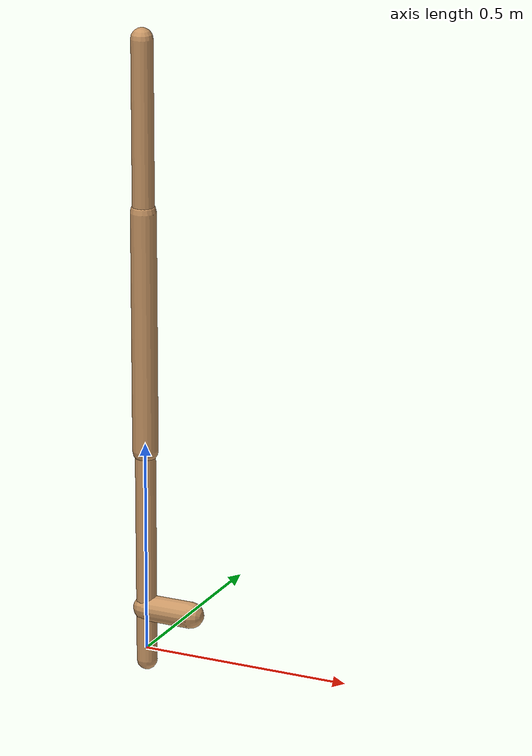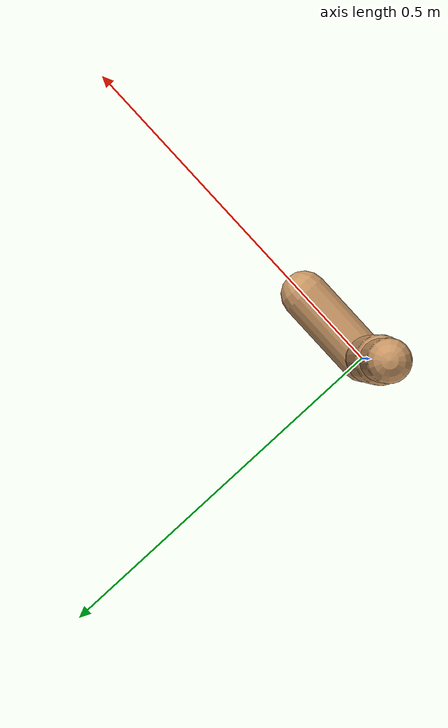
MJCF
<mujoco model="walker2d">
  <compiler angle="degree" coordinate="global" inertiafromgeom="true" />
  <default>
    <joint armature="0.01" damping=".1" limited="true" />
    <geom conaffinity="0" condim="3" contype="1" density="1000" friction="0.8 .1 .1" rgba="0.8 0.6 .4 1" />
  </default>
  <option integrator="RK4" timestep="0.002" />
  <worldbody>

    <body name="torso" pos="0 0 0.24316581513166768">
      <joint armature="0" axis="1 0 0" damping="0" limited="false" name="ignorex" pos="0 0 0" stiffness="0" type="slide" />
      <joint armature="0" axis="0 0 1" damping="0" limited="false" name="ignorez" pos="0 0 0" ref="1.25" stiffness="0" type="slide" />
      <joint armature="0" axis="0 1 0" damping="0" limited="false" name="ignorey" pos="0 0 0" stiffness="0" type="hinge" />
      <geom fromto="0 0 1.45 0 0 1.05" name="torso_geom" size="0.025580410228180563" type="capsule" />
      <body name="thigh">
        <joint axis="0 -1 0" name="thigh_joint" pos="0 0 1.05" range="-150 0" type="hinge" />
        <geom fromto="0.0 0.0 1.05 0.0 0.0 0.48481619283236793" name="thigh_geom" size="0.02986397311675039" type="capsule" />
        <body name="leg" pos="0.0 0.0 -0.11518380716763205">
          <joint axis="0 -1 0" name="leg_joint" pos="0 0 0.6" range="-150 0" type="hinge" />
          <geom fromto="0.0 0.0 0.6 0.0 0.0 -0.027982007964035605" name="leg_geom" size="0.02389117849340031" type="capsule" />
          <body name="foot" pos="0.0 0.0 -0.1279820079640356">
            <joint axis="0 -1 0" name="foot_joint" pos="0 0 0.1" range="-45 45" type="hinge" />
            <geom fromto="0.0 0.0 0.1 0.11242361699748145 0.0 0.1" name="foot_geom" size="0.030740848139383787" type="capsule" />
          </body>
        </body>
      </body>

      <body name="thigh_left">
        <joint axis="0 -1 0" name="thigh_left_joint" pos="0 0 1.05" range="-150 0" type="hinge" />
        <geom fromto="0.0 0.0 1.05 0.0 0.0 0.48481619283236793" name="thigh_left_geom" rgba=".7 .3 .6 1" size="0.02986397311675039" type="capsule" />
        <body name="leg_left" pos="0.0 0.0 -0.11518380716763205">
          <joint axis="0 -1 0" name="leg_left_joint" pos="0 0 0.6" range="-150 0" type="hinge" />
          <geom fromto="0.0 0.0 0.6 0.0 0.0 -0.027982007964035605" name="leg_left_geom" rgba=".7 .3 .6 1" size="0.02389117849340031" type="capsule" />
          <body name="foot_left" pos="0.0 0.0 -0.1279820079640356">
            <joint axis="0 -1 0" name="foot_left_joint" pos="0 0 0.1" range="-45 45" type="hinge" />
            <geom fromto="0.0 0.0 0.1 0.11242361699748145 0.0 0.1" name="foot_left_geom" rgba=".7 .3 .6 1" size="0.030740848139383787" type="capsule" />
          </body>
        </body>
      </body>
    </body>
  </worldbody>
  <actuator>

    <motor ctrllimited="true" ctrlrange="-1.0 1.0" gear="100" joint="thigh_joint" />
    <motor ctrllimited="true" ctrlrange="-1.0 1.0" gear="100" joint="leg_joint" />
    <motor ctrllimited="true" ctrlrange="-1.0 1.0" gear="100" joint="foot_joint" />
    <motor ctrllimited="true" ctrlrange="-1.0 1.0" gear="100" joint="thigh_left_joint" />
    <motor ctrllimited="true" ctrlrange="-1.0 1.0" gear="100" joint="leg_left_joint" />
    <motor ctrllimited="true" ctrlrange="-1.0 1.0" gear="100" joint="foot_left_joint" />

  </actuator>
</mujoco>
